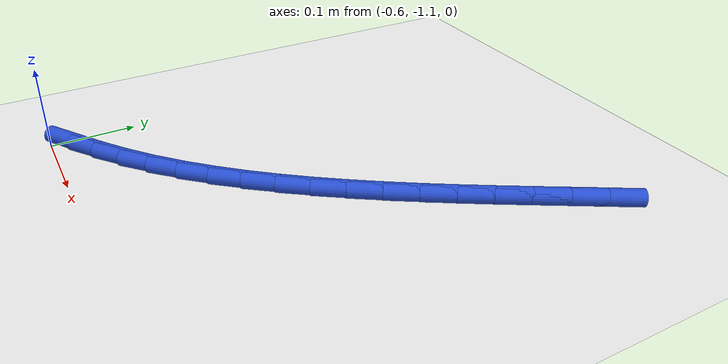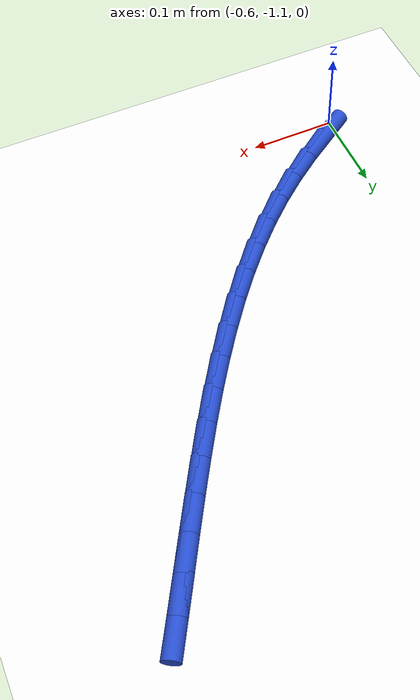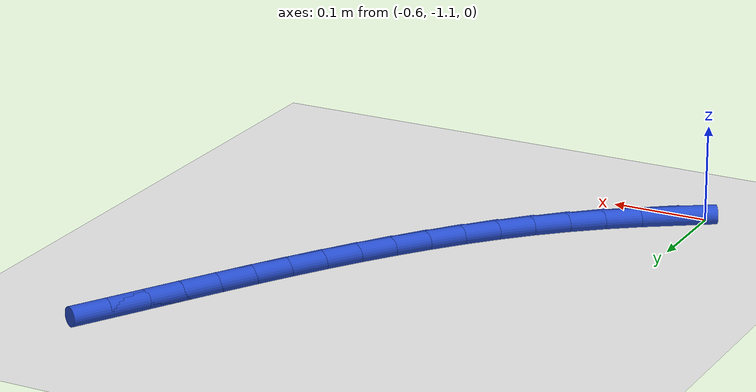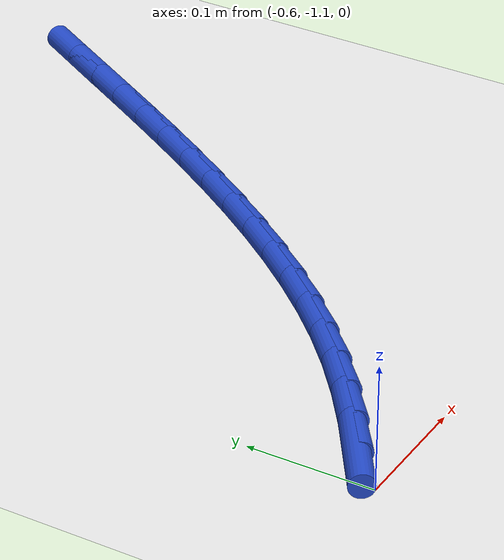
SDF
<sdf version="1.6">
 <world name="default">
  <model name="ground_plane">
   <static>1</static>
   <link name="link">
    <collision name="collision">
     <geometry><plane><normal>0 0 1</normal><size>100 100</size></plane></geometry>
     <surface><friction><ode><mu>100</mu><mu2>50</mu2></ode></friction></surface>
    </collision>
    <visual name="visual">
     <cast_shadows>0</cast_shadows>
     <geometry><plane><normal>0 0 1</normal><size>100 100</size></plane></geometry>
     <material>
      <script><uri>file://media/materials/scripts/gazebo.material</uri><name>Gazebo/WhiteGlow</name></script>
     </material>
    </visual>
   </link>
  </model>
  <model name="line">
   <link name="link_167">
    <pose>-0.5796367678224695 -1.0742013147230975 0.01 0 1.57 0.5886903345178798</pose>
    <collision name="collision">
     <geometry><cylinder><radius>0.01</radius><length>0.08</length></cylinder></geometry>
    </collision>
    <visual name="visual">
     <material>
      <script><name>Gazebo/Blue</name><uri>file://media/materials/scripts/gazebo.material</uri></script>
     </material>
     <geometry><cylinder><radius>0.01</radius><length>0.08</length></cylinder></geometry>
    </visual>
   </link>
   <link name="link_168">
    <pose>-0.5483830962453494 -1.0533344723664133 0.01 0 1.57 0.6361591637504964</pose>
    <collision name="collision">
     <geometry><cylinder><radius>0.01</radius><length>0.08</length></cylinder></geometry>
    </collision>
    <visual name="visual">
     <material>
      <script><name>Gazebo/Blue</name><uri>file://media/materials/scripts/gazebo.material</uri></script>
     </material>
     <geometry><cylinder><radius>0.01</radius><length>0.08</length></cylinder></geometry>
    </visual>
   </link>
   <link name="link_169">
    <pose>-0.5183037941918935 -1.0311181756971195 0.01 0 1.57 0.6879428848617326</pose>
    <collision name="collision">
     <geometry><cylinder><radius>0.01</radius><length>0.08</length></cylinder></geometry>
    </collision>
    <visual name="visual">
     <material>
      <script><name>Gazebo/Blue</name><uri>file://media/materials/scripts/gazebo.material</uri></script>
     </material>
     <geometry><cylinder><radius>0.01</radius><length>0.08</length></cylinder></geometry>
    </visual>
   </link>
   <link name="link_170">
    <pose>-0.4895054632623816 -1.007449300318624 0.01 0 1.57 0.7426930374662964</pose>
    <collision name="collision">
     <geometry><cylinder><radius>0.01</radius><length>0.08</length></cylinder></geometry>
    </collision>
    <visual name="visual">
     <material>
      <script><name>Gazebo/Blue</name><uri>file://media/materials/scripts/gazebo.material</uri></script>
     </material>
     <geometry><cylinder><radius>0.01</radius><length>0.08</length></cylinder></geometry>
    </visual>
   </link>
   <link name="link_171">
    <pose>-0.4620645605919289 -0.9822574532421954 0.01 0 1.57 0.7944326525279872</pose>
    <collision name="collision">
     <geometry><cylinder><radius>0.01</radius><length>0.08</length></cylinder></geometry>
    </collision>
    <visual name="visual">
     <material>
      <script><name>Gazebo/Blue</name><uri>file://media/materials/scripts/gazebo.material</uri></script>
     </material>
     <geometry><cylinder><radius>0.01</radius><length>0.08</length></cylinder></geometry>
    </visual>
   </link>
   <link name="link_172">
    <pose>-0.43591307113150674 -0.9556291120010533 0.01 0 1.57 0.8412536451055097</pose>
    <collision name="collision">
     <geometry><cylinder><radius>0.01</radius><length>0.08</length></cylinder></geometry>
    </collision>
    <visual name="visual">
     <material>
      <script><name>Gazebo/Blue</name><uri>file://media/materials/scripts/gazebo.material</uri></script>
     </material>
     <geometry><cylinder><radius>0.01</radius><length>0.08</length></cylinder></geometry>
    </visual>
   </link>
   <link name="link_173">
    <pose>-0.41093974980291764 -0.9276976940793831 0.01 0 1.57 0.8830849174376879</pose>
    <collision name="collision">
     <geometry><cylinder><radius>0.01</radius><length>0.08</length></cylinder></geometry>
    </collision>
    <visual name="visual">
     <material>
      <script><name>Gazebo/Blue</name><uri>file://media/materials/scripts/gazebo.material</uri></script>
     </material>
     <geometry><cylinder><radius>0.01</radius><length>0.08</length></cylinder></geometry>
    </visual>
   </link>
   <link name="link_174">
    <pose>-0.38703334363092495 -0.8985966255361189 0.01 0 1.57 0.9199506492749658</pose>
    <collision name="collision">
     <geometry><cylinder><radius>0.01</radius><length>0.08</length></cylinder></geometry>
    </collision>
    <visual name="visual">
     <material>
      <script><name>Gazebo/Blue</name><uri>file://media/materials/scripts/gazebo.material</uri></script>
     </material>
     <geometry><cylinder><radius>0.01</radius><length>0.08</length></cylinder></geometry>
    </visual>
   </link>
   <link name="link_175">
    <pose>-0.36408259964029166 -0.868459332430195 0.01 0 1.57 0.95193822924135</pose>
    <collision name="collision">
     <geometry><cylinder><radius>0.01</radius><length>0.08</length></cylinder></geometry>
    </collision>
    <visual name="visual">
     <material>
      <script><name>Gazebo/Blue</name><uri>file://media/materials/scripts/gazebo.material</uri></script>
     </material>
     <geometry><cylinder><radius>0.01</radius><length>0.08</length></cylinder></geometry>
    </visual>
   </link>
   <link name="link_176">
    <pose>-0.34197626485578075 -0.8374192408205459 0.01 0 1.57 0.9791707359482383</pose>
    <collision name="collision">
     <geometry><cylinder><radius>0.01</radius><length>0.08</length></cylinder></geometry>
    </collision>
    <visual name="visual">
     <material>
      <script><name>Gazebo/Blue</name><uri>file://media/materials/scripts/gazebo.material</uri></script>
     </material>
     <geometry><cylinder><radius>0.01</radius><length>0.08</length></cylinder></geometry>
    </visual>
   </link>
   <link name="link_177">
    <pose>-0.3206030863021552 -0.8056097767661052 0.01 0 1.57 1.0017846559466426</pose>
    <collision name="collision">
     <geometry><cylinder><radius>0.01</radius><length>0.08</length></cylinder></geometry>
    </collision>
    <visual name="visual">
     <material>
      <script><name>Gazebo/Blue</name><uri>file://media/materials/scripts/gazebo.material</uri></script>
     </material>
     <geometry><cylinder><radius>0.01</radius><length>0.08</length></cylinder></geometry>
    </visual>
   </link>
   <link name="link_178">
    <pose>-0.29985181100417796 -0.7731643663258075 0.01 0 1.57 1.019912750085366</pose>
    <collision name="collision">
     <geometry><cylinder><radius>0.01</radius><length>0.08</length></cylinder></geometry>
    </collision>
    <visual name="visual">
     <material>
      <script><name>Gazebo/Blue</name><uri>file://media/materials/scripts/gazebo.material</uri></script>
     </material>
     <geometry><cylinder><radius>0.01</radius><length>0.08</length></cylinder></geometry>
    </visual>
   </link>
   <link name="link_179">
    <pose>-0.27961118598661233 -0.7402164355585875 0.01 0 1.57 1.0336714078101015</pose>
    <collision name="collision">
     <geometry><cylinder><radius>0.01</radius><length>0.08</length></cylinder></geometry>
    </collision>
    <visual name="visual">
     <material>
      <script><name>Gazebo/Blue</name><uri>file://media/materials/scripts/gazebo.material</uri></script>
     </material>
     <geometry><cylinder><radius>0.01</radius><length>0.08</length></cylinder></geometry>
    </visual>
   </link>
   <link name="link_180">
    <pose>-0.25976995827422106 -0.706899410523379 0.01 0 1.57 1.0431516289319755</pose>
    <collision name="collision">
     <geometry><cylinder><radius>0.01</radius><length>0.08</length></cylinder></geometry>
    </collision>
    <visual name="visual">
     <material>
      <script><name>Gazebo/Blue</name><uri>file://media/materials/scripts/gazebo.material</uri></script>
     </material>
     <geometry><cylinder><radius>0.01</radius><length>0.08</length></cylinder></geometry>
    </visual>
   </link>
   <link name="link_181">
    <pose>-0.24021687489176727 -0.6733467172791159 0.01 0 1.57 1.0484128006527191</pose>
    <collision name="collision">
     <geometry><cylinder><radius>0.01</radius><length>0.08</length></cylinder></geometry>
    </collision>
    <visual name="visual">
     <material>
      <script><name>Gazebo/Blue</name><uri>file://media/materials/scripts/gazebo.material</uri></script>
     </material>
     <geometry><cylinder><radius>0.01</radius><length>0.08</length></cylinder></geometry>
    </visual>
   </link>
   <link name="link_182">
    <pose>-0.22084068286401395 -0.6396917818847331 0.01 0 1.57 1.0494785870714993</pose>
    <collision name="collision">
     <geometry><cylinder><radius>0.01</radius><length>0.08</length></cylinder></geometry>
    </collision>
    <visual name="visual">
     <material>
      <script><name>Gazebo/Blue</name><uri>file://media/materials/scripts/gazebo.material</uri></script>
     </material>
     <geometry><cylinder><radius>0.01</radius><length>0.08</length></cylinder></geometry>
    </visual>
   </link>
   <link name="link_183">
    <pose>-0.2015301292157242 -0.6060680303991643 0.01 0 1.57 1.0465042350080496</pose>
    <collision name="collision">
     <geometry><cylinder><radius>0.01</radius><length>0.08</length></cylinder></geometry>
    </collision>
    <visual name="visual">
     <material>
      <script><name>Gazebo/Blue</name><uri>file://media/materials/scripts/gazebo.material</uri></script>
     </material>
     <geometry><cylinder><radius>0.01</radius><length>0.08</length></cylinder></geometry>
    </visual>
   </link>
  </model>
 </world>
</sdf>
